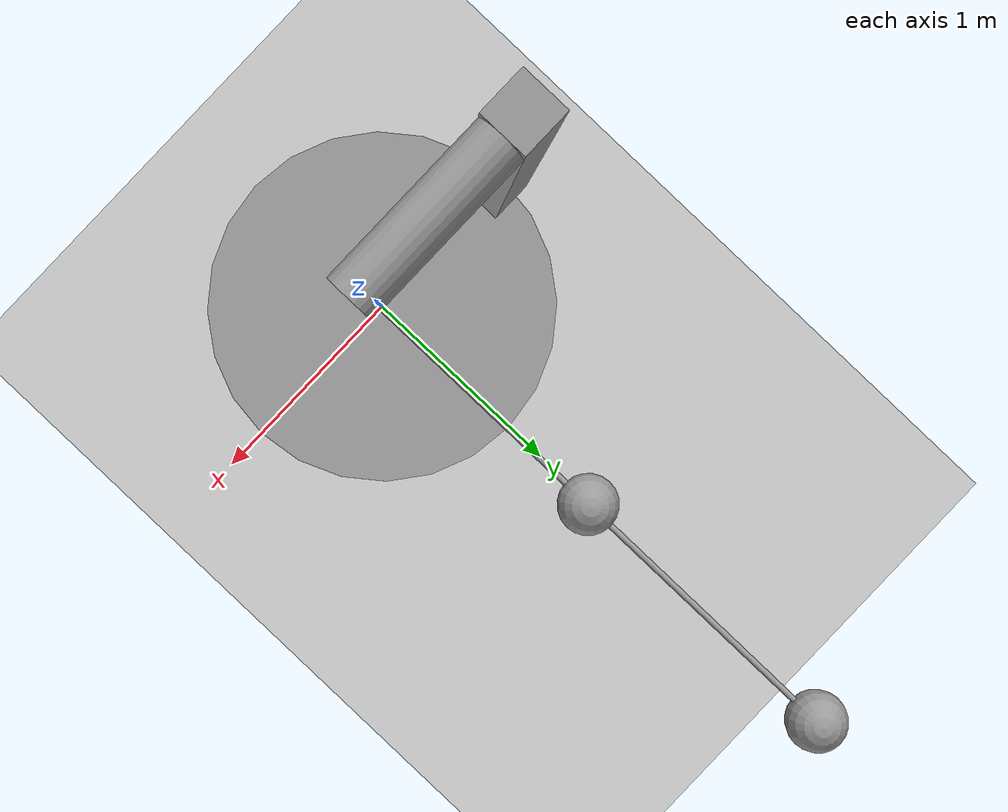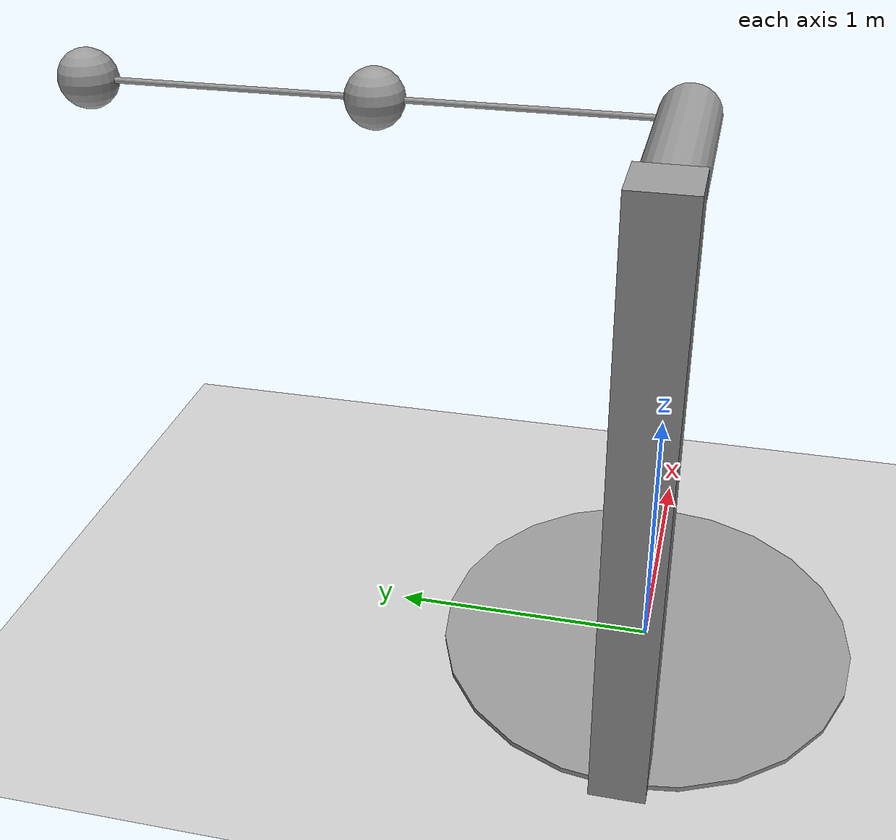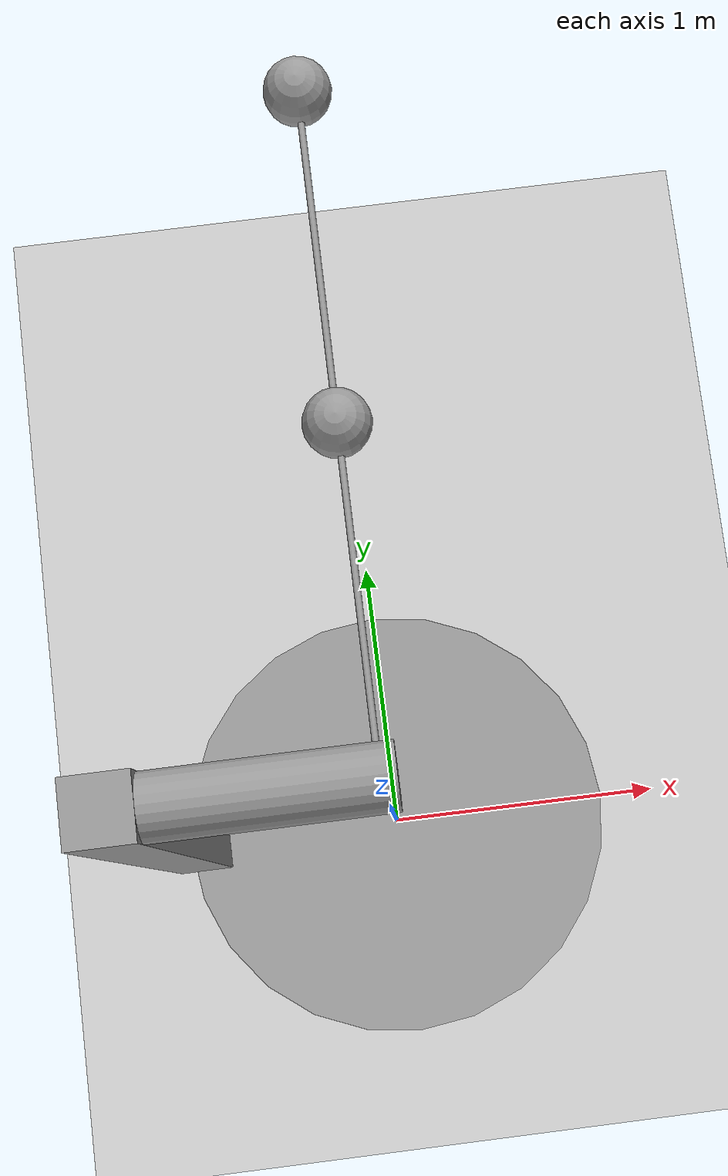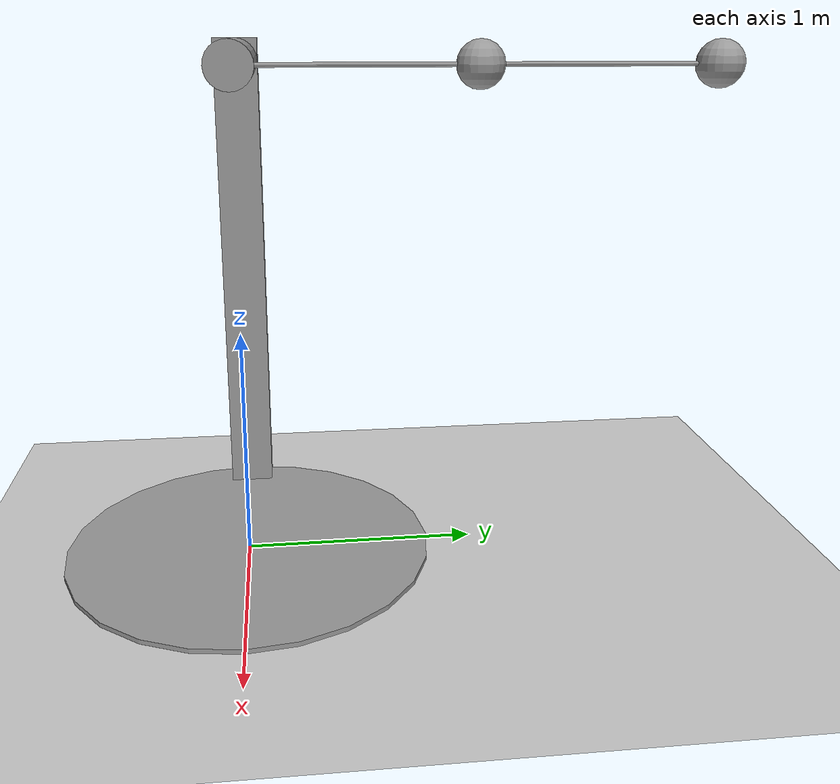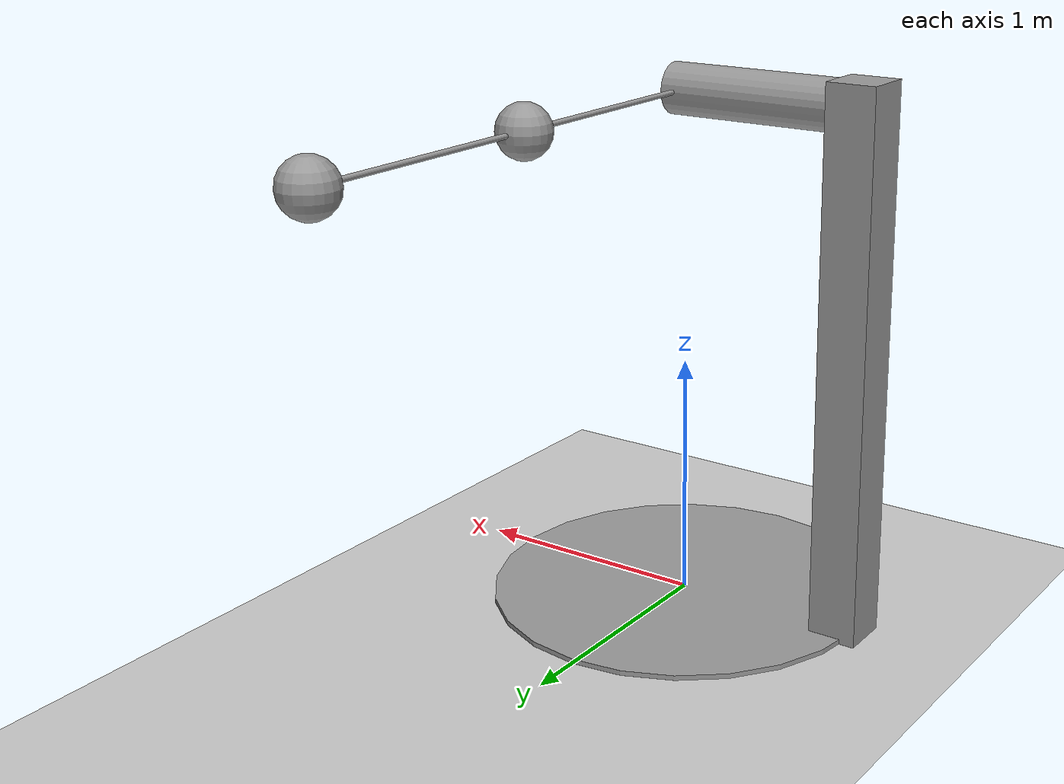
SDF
<?xml version="1.0" ?>
<sdf version="1.5">
  <world name="default">
    <physics type="ode">
      <gravity>0 0 -9.81</gravity>
      <real_time_update_rate>1000</real_time_update_rate>
    </physics>
    <include>
      <uri>model://sun</uri>
    </include>
    <include>
      <uri>model://ground_plane</uri>
    </include>

    <include>
      <uri>model://double_pendulum_bobs_hilimits</uri>
      <plugin name="double_pendulum_PID" filename="libtrack_sinusoidal.so" />
    </include>

</world>
</sdf>

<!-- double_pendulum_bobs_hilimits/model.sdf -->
<sdf version="1.5">
  <model name="double_pendulum_with_base">
    <link name="base">
      <visual name="vis_plate_on_ground">
        <pose>0 0 0.01 0 0 0</pose>
        <geometry>
          <cylinder>
            <radius>0.8</radius>
            <length>0.02</length>
          </cylinder>
        </geometry>
        <material>
          <script>
            <uri>file://media/materials/scripts/gazebo.material</uri>
            <name>Gazebo/Grey</name>
          </script>
        </material>
      </visual>
      <visual name="vis_pole">
        <pose>-0.75 0 1.1 0 0 0</pose>
        <geometry>
          <box>
            <size>0.2 0.2 2.2</size>
          </box>
        </geometry>
        <material>
          <script>
            <uri>file://media/materials/scripts/gazebo.material</uri>
            <name>Gazebo/Grey</name>
          </script>
        </material>
      </visual>
      <collision name="col_plate_on_ground">
        <pose>0 0 0.01 0 0 0</pose>
        <geometry>
          <cylinder>
            <radius>0.8</radius>
            <length>0.02</length>
          </cylinder>
        </geometry>
      </collision>
      <collision name="col_pole">
        <pose>-0.275 0 1.1 0 0 0</pose>
        <geometry>
          <box>
            <size>0.2 0.2 2.2</size>
          </box>
        </geometry>
      </collision>
    </link>
    <!-- upper link, length 1, IC -90 degrees -->
    <link name="upper_link">
      <pose>0.0 1.0 2.1 0.0 0 0</pose>
      <self_collide>0</self_collide>
      <inertial>
        <mass>1.0</mass>
        <inertia>
          <ixx>.004</ixx>
          <iyy>.004</iyy>
          <izz>.004</izz>
          <ixz>0</ixz>
          <iyz>0</iyz>
          <ixy>0</ixy>
        </inertia>
      </inertial>
      <visual name="vis_upper_joint">
        <pose>-0.3 -1 0 0 -1.5708 0</pose>
        <geometry>
          <cylinder>
            <radius>0.1</radius>
            <length>0.7</length>
          </cylinder>
        </geometry>
        <material>
          <script>
            <uri>file://media/materials/scripts/gazebo.material</uri>
            <name>Gazebo/Grey</name>
          </script>
        </material>
      </visual>
      <visual name="vis_cylinder">
        <pose>0.0 -0.5 0 1.5708 0 0</pose>
        <geometry>
          <cylinder>
            <radius>0.01</radius>
            <length>0.9</length>
          </cylinder>
        </geometry>
        <material>
          <script>
            <uri>file://media/materials/scripts/gazebo.material</uri>
            <name>Gazebo/Grey</name>
          </script>
        </material>
      </visual>
      <visual name="vis_b1">
        <pose>0.0 0.0 0.0 0 0 0</pose>
        <geometry>
          <sphere>
            <radius>0.1</radius>
          </sphere>
        </geometry>
        <material>
          <script>
            <uri>file://media/materials/scripts/gazebo.material</uri>
            <name>Gazebo/Grey</name>
          </script>
        </material>
      </visual>
    </link>
    <!-- lower link, length 1, IC ~-120 degrees more -->
    <link name="lower_link">
      <pose>0.0 2.0 2.1 0 0 0</pose>
      <self_collide>0</self_collide>
      <inertial>
        <mass>1.0</mass>
        <inertia>
          <ixx>.004</ixx>
          <iyy>.004</iyy>
          <izz>.004</izz>
          <ixz>0</ixz>
          <iyz>0</iyz>
          <ixy>0</ixy>
        </inertia>
      </inertial>
      <visual name="vis_b2">
        <pose>0.0 0.0 0.0 0 0 0</pose>
        <geometry>
          <sphere>
            <radius>0.1</radius>
          </sphere>
        </geometry>
        <material>
          <script>
            <uri>file://media/materials/scripts/gazebo.material</uri>
            <name>Gazebo/Grey</name>
          </script>
        </material>
      </visual>
      <visual name="vis_cylinder">
        <pose>0 -0.5 0.0 1.5708 0 0</pose>
        <geometry>
          <cylinder>
            <radius>0.01</radius>
            <length>0.9</length>
          </cylinder>
        </geometry>
        <material>
          <script>
            <uri>file://media/materials/scripts/gazebo.material</uri>
            <name>Gazebo/Grey</name>
          </script>
        </material>
      </visual>
    </link>
    <!-- joint keeping pendulum attached to world -->
    <joint name="world" type="revolute">
      <parent>world</parent>
      <child>base</child>
      <axis>
        <xyz>1 0 0</xyz>
        <limit>
          <lower>0.0</lower>
          <upper>0.0</upper>
        </limit>
      </axis>
    </joint>
    <!-- pin joint for upper link, at origin of upper link -->
    <joint name="upper_joint" type="revolute">
      <pose>0 -1.0 0 0 0 0</pose>
      <parent>base</parent>
      <child>upper_link</child>
      <axis>
        <limit>
          <effort>1000</effort>
        </limit>
        <xyz>1.0 0 0</xyz>
      </axis>
    </joint>
    <!-- pin joint for lower link, at origin of child link -->
    <joint name="lower_joint" type="revolute">
      <pose>0 -1.0 0 0 0 0</pose>
      <parent>upper_link</parent>
      <child>lower_link</child>
      <axis>
       <limit>
         <effort>100</effort>
       </limit>
       <xyz>1.0 0 0</xyz>
      </axis>
    </joint>
  </model>
</sdf>
